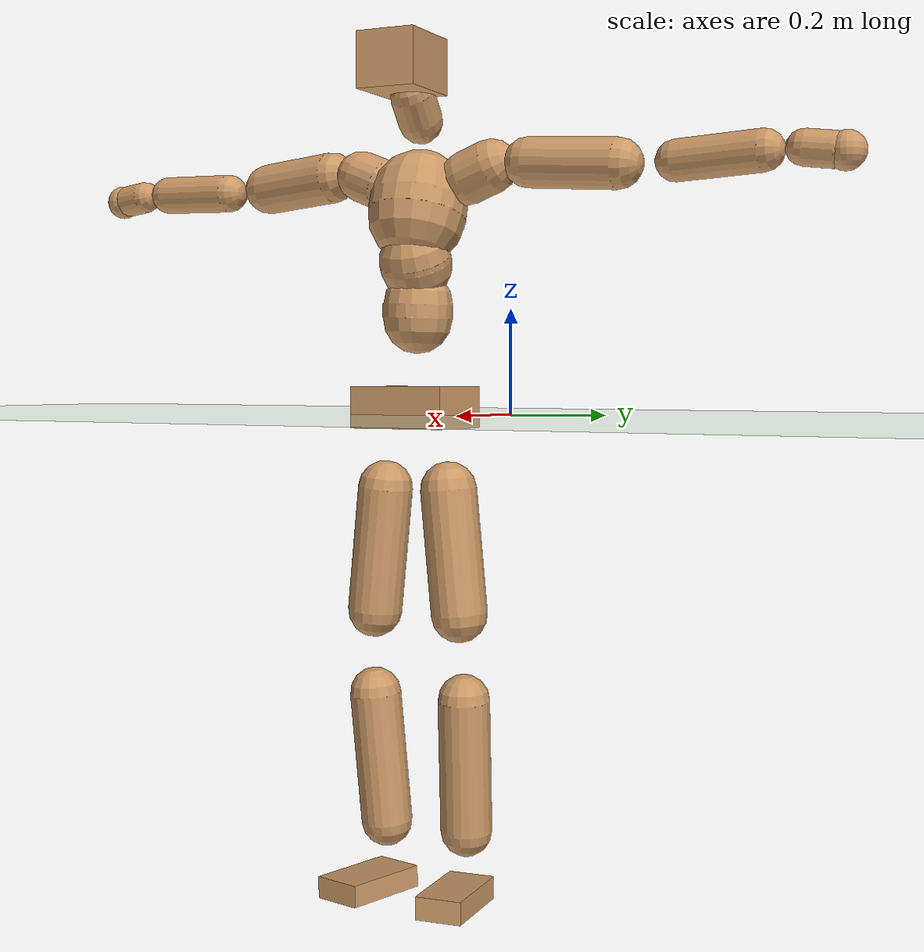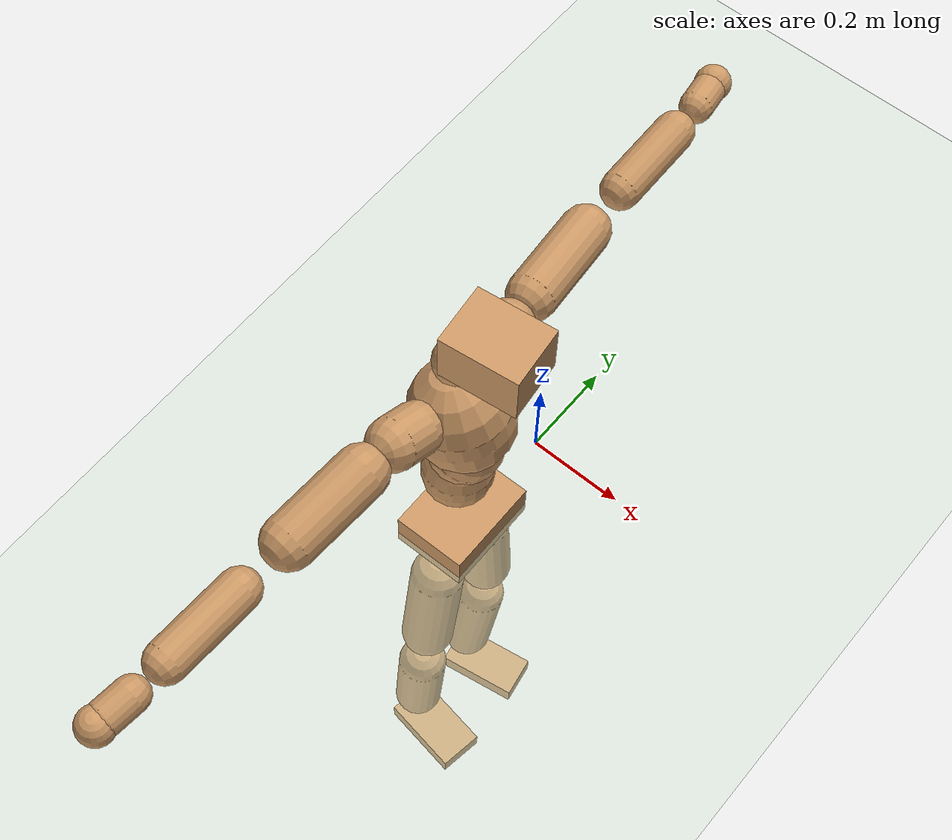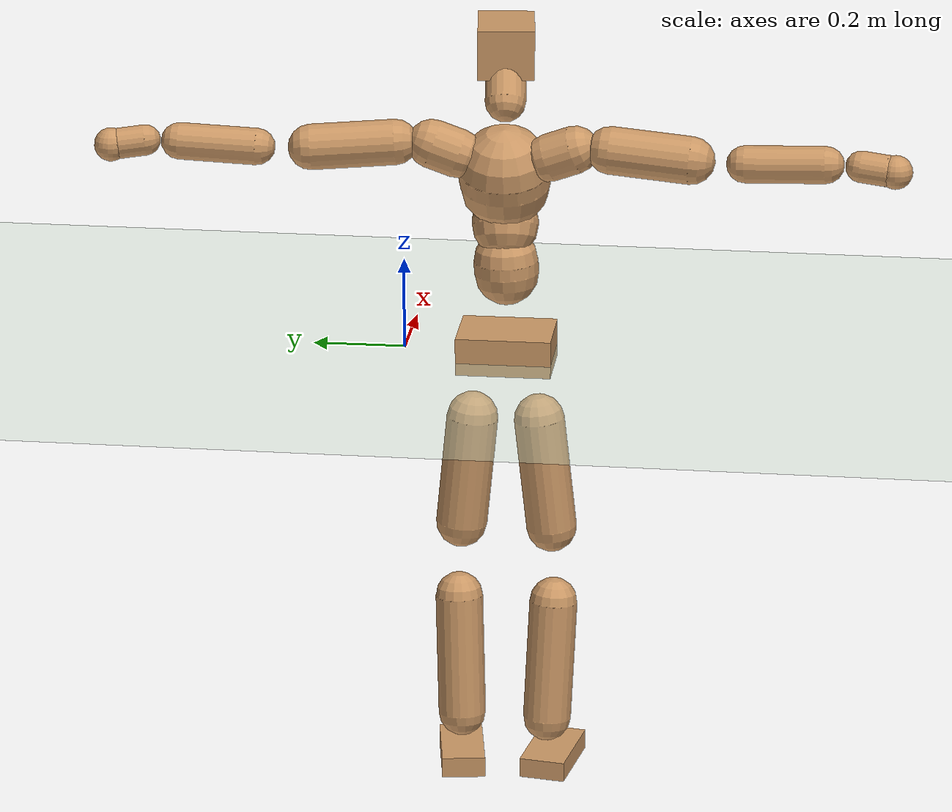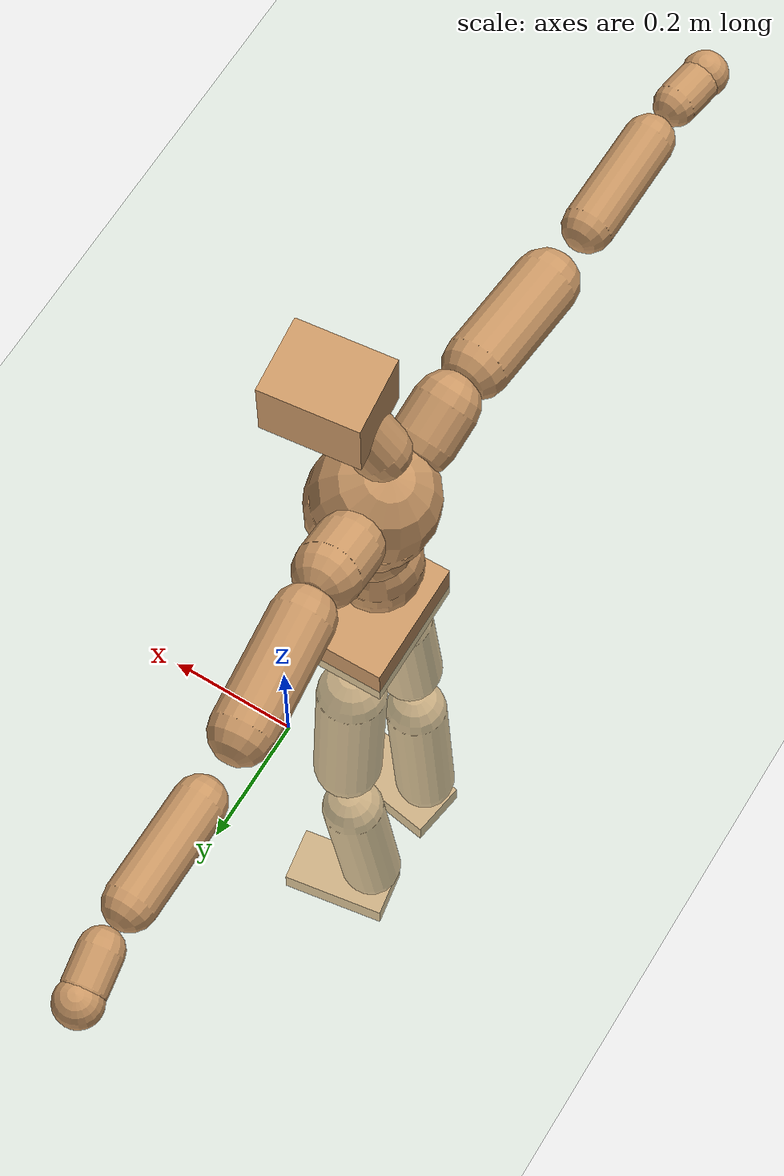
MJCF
<mujoco model="humanoid">
  <compiler coordinate="local" angle="radian"/>
  <default>
    <joint damping="0.0" armature="0.01" stiffness="0.0" limited="true"/>
    <geom conaffinity="1" condim="3" contype="7" margin="0.001" rgba="0.8 0.6 .4 1"/>
  </default>
  <asset>
    <texture type="skybox" builtin="gradient" rgb1=".4 .5 .6" rgb2="0 0 0" width="100" height="100"/>
    <texture builtin="flat" height="1278" mark="cross" markrgb="1 1 1" name="texgeom" random="0.01" rgb1="0.8 0.6 0.4" rgb2="0.8 0.6 0.4" type="cube" width="127"/>
    <texture builtin="checker" height="100" name="texplane" rgb1="0 0 0" rgb2="0.8 0.8 0.8" type="2d" width="100"/>
    <material name="MatPlane" reflectance="0.5" shininess="1" specular="1" texrepeat="60 60" texture="texplane"/>
    <material name="geom" texture="texgeom" texuniform="true"/>
  </asset>
  <worldbody>
    <light cutoff="100" diffuse="1 1 1" dir="-0 0 -1.3" directional="true" exponent="1" pos="0 0 1.3" specular=".1 .1 .1"/>
    <geom conaffinity="1" condim="3" name="floor" pos="0 0 0" rgba="0.8 0.9 0.8 1" size="100 100 .2" type="plane" material="MatPlane"/>
    <body name="Pelvis" pos="-0.0023 -0.223 0.0244">
      <freejoint name="Pelvis"/>
      <geom type="box" contype="1" conaffinity="1" density="500" pos="-0.0064 -0.0000 -0.0127" size="0.0765 0.1032 0.0413" quat="1.0000 0.0000 0.0000 0.0033" name="Pelvis"/>
      <body name="L_Hip" pos="-0.0124 0.0659 -0.0925">
        <joint name="L_Hip_x" type="hinge" pos="0 0 0" axis="1 0 0" stiffness="800" damping="80" armature="0.02" range="-180.0000 180.0000"/>
        <joint name="L_Hip_y" type="hinge" pos="0 0 0" axis="0 1 0" stiffness="800" damping="80" armature="0.02" range="-180.0000 180.0000"/>
        <joint name="L_Hip_z" type="hinge" pos="0 0 0" axis="0 0 1" stiffness="800" damping="80" armature="0.02" range="-180.0000 180.0000"/>
        <geom type="capsule" contype="1" conaffinity="1" density="500" fromto="-0.0007 0.0079 -0.0823 -0.0028 0.0318 -0.3291" size="0.056" name="L_Hip"/>
        <body name="L_Knee" pos="-0.0035 0.0397 -0.4114">
          <joint name="L_Knee_x" type="hinge" pos="0 0 0" axis="1 0 0" stiffness="800" damping="80" armature="0.02" range="-180.0000 180.0000"/>
          <joint name="L_Knee_y" type="hinge" pos="0 0 0" axis="0 1 0" stiffness="800" damping="80" armature="0.02" range="-180.0000 180.0000"/>
          <joint name="L_Knee_z" type="hinge" pos="0 0 0" axis="0 0 1" stiffness="800" damping="80" armature="0.02" range="-180.0000 180.0000"/>
          <geom type="capsule" contype="1" conaffinity="1" density="500" fromto="-0.0088 -0.0031 -0.0899 -0.0352 -0.0124 -0.3594" size="0.0521" name="L_Knee"/>
          <body name="L_Ankle" pos="-0.044 -0.0155 -0.4493">
            <joint name="L_Ankle_x" type="hinge" pos="0 0 0" axis="1 0 0" stiffness="800" damping="80" armature="0.02" range="-180.0000 180.0000"/>
            <joint name="L_Ankle_y" type="hinge" pos="0 0 0" axis="0 1 0" stiffness="800" damping="80" armature="0.02" range="-180.0000 180.0000"/>
            <joint name="L_Ankle_z" type="hinge" pos="0 0 0" axis="0 0 1" stiffness="800" damping="80" armature="0.02" range="-180.0000 180.0000"/>
            <geom type="box" contype="1" conaffinity="1" density="500" pos="0.0646 0.0105 -0.0321" size="0.0903 0.0474 0.023" quat="0.9967 0.0000 0.0000 0.0806" name="L_Ankle"/>
            <body name="L_Toe" pos="0.1293 0.021 -0.0643">
              <joint name="L_Toe_x" type="hinge" pos="0 0 0" axis="1 0 0" stiffness="500" damping="50" armature="0.02" range="-180.0000 180.0000"/>
              <joint name="L_Toe_y" type="hinge" pos="0 0 0" axis="0 1 0" stiffness="500" damping="50" armature="0.02" range="-180.0000 180.0000"/>
              <joint name="L_Toe_z" type="hinge" pos="0 0 0" axis="0 0 1" stiffness="500" damping="50" armature="0.02" range="-180.0000 180.0000"/>
              <geom type="box" contype="1" conaffinity="1" density="500" pos="0.0000 0.0000 0.0317" size="0.001 0.0024 0.0011" quat="0.9962 0.0000 0.0000 0.0868" name="L_Toe"/>
            </body>
          </body>
        </body>
      </body>
      <body name="R_Hip" pos="-0.0071 -0.0627 -0.0918">
        <joint name="R_Hip_x" type="hinge" pos="0 0 0" axis="1 0 0" stiffness="800" damping="80" armature="0.02" range="-180.0000 180.0000"/>
        <joint name="R_Hip_y" type="hinge" pos="0 0 0" axis="0 1 0" stiffness="800" damping="80" armature="0.02" range="-180.0000 180.0000"/>
        <joint name="R_Hip_z" type="hinge" pos="0 0 0" axis="0 0 1" stiffness="800" damping="80" armature="0.02" range="-180.0000 180.0000"/>
        <geom type="capsule" contype="1" conaffinity="1" density="500" fromto="-0.0012 -0.0094 -0.0835 -0.0049 -0.0378 -0.3339" size="0.0551" name="R_Hip"/>
        <body name="R_Knee" pos="-0.0062 -0.0472 -0.4174">
          <joint name="R_Knee_x" type="hinge" pos="0 0 0" axis="1 0 0" stiffness="800" damping="80" armature="0.02" range="-180.0000 180.0000"/>
          <joint name="R_Knee_y" type="hinge" pos="0 0 0" axis="0 1 0" stiffness="800" damping="80" armature="0.02" range="-180.0000 180.0000"/>
          <joint name="R_Knee_z" type="hinge" pos="0 0 0" axis="0 0 1" stiffness="800" damping="80" armature="0.02" range="-180.0000 180.0000"/>
          <geom type="capsule" contype="1" conaffinity="1" density="500" fromto="-0.0083 0.0036 -0.0896 -0.0332 0.0145 -0.3586" size="0.0525" name="R_Knee"/>
          <body name="R_Ankle" pos="-0.0415 0.0182 -0.4482">
            <joint name="R_Ankle_x" type="hinge" pos="0 0 0" axis="1 0 0" stiffness="800" damping="80" armature="0.02" range="-180.0000 180.0000"/>
            <joint name="R_Ankle_y" type="hinge" pos="0 0 0" axis="0 1 0" stiffness="800" damping="80" armature="0.02" range="-180.0000 180.0000"/>
            <joint name="R_Ankle_z" type="hinge" pos="0 0 0" axis="0 0 1" stiffness="800" damping="80" armature="0.02" range="-180.0000 180.0000"/>
            <geom type="box" contype="1" conaffinity="1" density="500" pos="0.0668 -0.0106 -0.0264" size="0.0933 0.0505 0.022" quat="0.9969 0.0000 0.0000 -0.0789" name="R_Ankle"/>
            <body name="R_Toe" pos="0.1336 -0.0213 -0.0528">
              <joint name="R_Toe_x" type="hinge" pos="0 0 0" axis="1 0 0" stiffness="500" damping="50" armature="0.02" range="-180.0000 180.0000"/>
              <joint name="R_Toe_y" type="hinge" pos="0 0 0" axis="0 1 0" stiffness="500" damping="50" armature="0.02" range="-180.0000 180.0000"/>
              <joint name="R_Toe_z" type="hinge" pos="0 0 0" axis="0 0 1" stiffness="500" damping="50" armature="0.02" range="-180.0000 180.0000"/>
              <geom type="box" contype="1" conaffinity="1" density="500" pos="0.0000 0.0000 0.0299" size="0.0009 0.0024 0.0013" quat="0.9975 0.0000 0.0000 -0.0706" name="R_Toe"/>
            </body>
          </body>
        </body>
      </body>
      <body name="Torso" pos="-0.0191 -0.0035 0.1081">
        <joint name="Torso_x" type="hinge" pos="0 0 0" axis="1 0 0" stiffness="1000" damping="100" armature="0.02" range="-180.0000 180.0000"/>
        <joint name="Torso_y" type="hinge" pos="0 0 0" axis="0 1 0" stiffness="1000" damping="100" armature="0.02" range="-180.0000 180.0000"/>
        <joint name="Torso_z" type="hinge" pos="0 0 0" axis="0 0 1" stiffness="1000" damping="100" armature="0.02" range="-180.0000 180.0000"/>
        <geom type="capsule" contype="1" conaffinity="1" density="500" fromto="0.0007 0.0030 0.0822 0.0005 0.0020 0.0548" size="0.0699" name="Torso"/>
        <body name="Spine" pos="0.0012 0.0051 0.1371">
          <joint name="Spine_x" type="hinge" pos="0 0 0" axis="1 0 0" stiffness="1000" damping="100" armature="0.02" range="-180.0000 180.0000"/>
          <joint name="Spine_y" type="hinge" pos="0 0 0" axis="0 1 0" stiffness="1000" damping="100" armature="0.02" range="-180.0000 180.0000"/>
          <joint name="Spine_z" type="hinge" pos="0 0 0" axis="0 0 1" stiffness="1000" damping="100" armature="0.02" range="-180.0000 180.0000"/>
          <geom type="capsule" contype="1" conaffinity="1" density="500" fromto="0.0156 0.0014 0.0322 0.0104 0.0009 0.0215" size="0.0716" name="Spine"/>
          <body name="Chest" pos="0.026 0.0023 0.0536">
            <joint name="Chest_x" type="hinge" pos="0 0 0" axis="1 0 0" stiffness="1000" damping="100" armature="0.02" range="-180.0000 180.0000"/>
            <joint name="Chest_y" type="hinge" pos="0 0 0" axis="0 1 0" stiffness="1000" damping="100" armature="0.02" range="-180.0000 180.0000"/>
            <joint name="Chest_z" type="hinge" pos="0 0 0" axis="0 0 1" stiffness="1000" damping="100" armature="0.02" range="-180.0000 180.0000"/>
            <geom type="capsule" contype="1" conaffinity="1" density="500" fromto="-0.0274 -0.0014 0.0983 -0.0183 -0.0010 0.0655" size="0.0979" name="Chest"/>
            <body name="Neck" pos="-0.0485 -0.0052 0.2369">
              <joint name="Neck_x" type="hinge" pos="0 0 0" axis="1 0 0" stiffness="500" damping="50" armature="0.02" range="-180.0000 180.0000"/>
              <joint name="Neck_y" type="hinge" pos="0 0 0" axis="0 1 0" stiffness="500" damping="50" armature="0.02" range="-180.0000 180.0000"/>
              <joint name="Neck_z" type="hinge" pos="0 0 0" axis="0 0 1" stiffness="500" damping="50" armature="0.02" range="-180.0000 180.0000"/>
              <geom type="capsule" contype="1" conaffinity="1" density="500" fromto="0.0118 0.0010 0.0152 0.0473 0.0039 0.0608" size="0.044" name="Neck"/>
              <body name="Head" pos="0.0592 0.0049 0.076">
                <joint name="Head_x" type="hinge" pos="0 0 0" axis="1 0 0" stiffness="500" damping="50" armature="0.02" range="-180.0000 180.0000"/>
                <joint name="Head_y" type="hinge" pos="0 0 0" axis="0 1 0" stiffness="500" damping="50" armature="0.02" range="-180.0000 180.0000"/>
                <joint name="Head_z" type="hinge" pos="0 0 0" axis="0 0 1" stiffness="500" damping="50" armature="0.02" range="-180.0000 180.0000"/>
                <geom type="box" contype="1" conaffinity="1" density="500" pos="0.0306 0.0035 0.0390" size="0.077 0.0605 0.0543" quat="0.9984 0.0000 0.0000 0.0564" name="Head"/>
              </body>
            </body>
            <body name="L_Thorax" pos="-0.0429 0.078 0.1281">
              <joint name="L_Thorax_x" type="hinge" pos="0 0 0" axis="1 0 0" stiffness="500" damping="50" armature="0.02" range="-180.0000 180.0000"/>
              <joint name="L_Thorax_y" type="hinge" pos="0 0 0" axis="0 1 0" stiffness="500" damping="50" armature="0.02" range="-180.0000 180.0000"/>
              <joint name="L_Thorax_z" type="hinge" pos="0 0 0" axis="0 0 1" stiffness="500" damping="50" armature="0.02" range="-180.0000 180.0000"/>
              <geom type="capsule" contype="1" conaffinity="1" density="500" fromto="-0.0010 0.0185 0.0069 -0.0041 0.0740 0.0276" size="0.0527" name="L_Thorax"/>
              <body name="L_Shoulder" pos="-0.0051 0.0925 0.0345">
                <joint name="L_Shoulder_x" type="hinge" pos="0 0 0" axis="1 0 0" stiffness="500" damping="50" armature="0.02" range="-720.0000 720.0000"/>
                <joint name="L_Shoulder_y" type="hinge" pos="0 0 0" axis="0 1 0" stiffness="500" damping="50" armature="0.02" range="-720.0000 720.0000"/>
                <joint name="L_Shoulder_z" type="hinge" pos="0 0 0" axis="0 0 1" stiffness="500" damping="50" armature="0.02" range="-720.0000 720.0000"/>
                <geom type="capsule" contype="1" conaffinity="1" density="500" fromto="-0.0058 0.0598 -0.0040 -0.0232 0.2390 -0.0162" size="0.0492" name="L_Shoulder"/>
                <body name="L_Elbow" pos="-0.029 0.2988 -0.0202">
                  <joint name="L_Elbow_x" type="hinge" pos="0 0 0" axis="1 0 0" stiffness="500" damping="50" armature="0.02" range="-720.0000 720.0000"/>
                  <joint name="L_Elbow_y" type="hinge" pos="0 0 0" axis="0 1 0" stiffness="500" damping="50" armature="0.02" range="-720.0000 720.0000"/>
                  <joint name="L_Elbow_z" type="hinge" pos="0 0 0" axis="0 0 1" stiffness="500" damping="50" armature="0.02" range="-720.0000 720.0000"/>
                  <geom type="capsule" contype="1" conaffinity="1" density="500" fromto="-0.0001 0.0557 0.0022 -0.0006 0.2229 0.0089" size="0.0395" name="L_Elbow"/>
                  <body name="L_Wrist" pos="-0.0007 0.2786 0.0112">
                    <joint name="L_Wrist_x" type="hinge" pos="0 0 0" axis="1 0 0" stiffness="300" damping="30" armature="0.02" range="-180.0000 180.0000"/>
                    <joint name="L_Wrist_y" type="hinge" pos="0 0 0" axis="0 1 0" stiffness="300" damping="30" armature="0.02" range="-180.0000 180.0000"/>
                    <joint name="L_Wrist_z" type="hinge" pos="0 0 0" axis="0 0 1" stiffness="300" damping="30" armature="0.02" range="-180.0000 180.0000"/>
                    <geom type="capsule" contype="1" conaffinity="1" density="500" fromto="-0.0030 0.0181 -0.0022 -0.0120 0.0723 -0.0089" size="0.0333" name="L_Wrist"/>
                    <body name="L_Hand" pos="-0.015 0.0904 -0.0111">
                      <joint name="L_Hand_x" type="hinge" pos="0 0 0" axis="1 0 0" stiffness="300" damping="30" armature="0.02" range="-180.0000 180.0000"/>
                      <joint name="L_Hand_y" type="hinge" pos="0 0 0" axis="0 1 0" stiffness="300" damping="30" armature="0.02" range="-180.0000 180.0000"/>
                      <joint name="L_Hand_z" type="hinge" pos="0 0 0" axis="0 0 1" stiffness="300" damping="30" armature="0.02" range="-180.0000 180.0000"/>
                      <geom type="sphere" contype="1" conaffinity="1" density="500" size="0.0361" pos="0.0000 0.0000 0.0000" name="L_Hand"/>
                    </body>
                  </body>
                </body>
              </body>
            </body>
            <body name="R_Thorax" pos="-0.0456 -0.08 0.1262">
              <joint name="R_Thorax_x" type="hinge" pos="0 0 0" axis="1 0 0" stiffness="500" damping="50" armature="0.02" range="-180.0000 180.0000"/>
              <joint name="R_Thorax_y" type="hinge" pos="0 0 0" axis="0 1 0" stiffness="500" damping="50" armature="0.02" range="-180.0000 180.0000"/>
              <joint name="R_Thorax_z" type="hinge" pos="0 0 0" axis="0 0 1" stiffness="500" damping="50" armature="0.02" range="-180.0000 180.0000"/>
              <geom type="capsule" contype="1" conaffinity="1" density="500" fromto="-0.0013 -0.0187 0.0072 -0.0052 -0.0749 0.0288" size="0.0512" name="R_Thorax"/>
              <body name="R_Shoulder" pos="-0.0065 -0.0936 0.036">
                <joint name="R_Shoulder_x" type="hinge" pos="0 0 0" axis="1 0 0" stiffness="500" damping="50" armature="0.02" range="-720.0000 720.0000"/>
                <joint name="R_Shoulder_y" type="hinge" pos="0 0 0" axis="0 1 0" stiffness="500" damping="50" armature="0.02" range="-720.0000 720.0000"/>
                <joint name="R_Shoulder_z" type="hinge" pos="0 0 0" axis="0 0 1" stiffness="500" damping="50" armature="0.02" range="-720.0000 720.0000"/>
                <geom type="capsule" contype="1" conaffinity="1" density="500" fromto="-0.0039 -0.0575 -0.0041 -0.0158 -0.2299 -0.0163" size="0.0514" name="R_Shoulder"/>
                <body name="R_Elbow" pos="-0.0197 -0.2874 -0.0203">
                  <joint name="R_Elbow_x" type="hinge" pos="0 0 0" axis="1 0 0" stiffness="500" damping="50" armature="0.02" range="-720.0000 720.0000"/>
                  <joint name="R_Elbow_y" type="hinge" pos="0 0 0" axis="0 1 0" stiffness="500" damping="50" armature="0.02" range="-720.0000 720.0000"/>
                  <joint name="R_Elbow_z" type="hinge" pos="0 0 0" axis="0 0 1" stiffness="500" damping="50" armature="0.02" range="-720.0000 720.0000"/>
                  <geom type="capsule" contype="1" conaffinity="1" density="500" fromto="-0.0012 -0.0569 0.0020 -0.0047 -0.2276 0.0078" size="0.0399" name="R_Elbow"/>
                  <body name="R_Wrist" pos="-0.0058 -0.2845 0.0098">
                    <joint name="R_Wrist_x" type="hinge" pos="0 0 0" axis="1 0 0" stiffness="300" damping="30" armature="0.02" range="-180.0000 180.0000"/>
                    <joint name="R_Wrist_y" type="hinge" pos="0 0 0" axis="0 1 0" stiffness="300" damping="30" armature="0.02" range="-180.0000 180.0000"/>
                    <joint name="R_Wrist_z" type="hinge" pos="0 0 0" axis="0 0 1" stiffness="300" damping="30" armature="0.02" range="-180.0000 180.0000"/>
                    <geom type="capsule" contype="1" conaffinity="1" density="500" fromto="-0.0023 -0.0182 -0.0017 -0.0093 -0.0729 -0.0067" size="0.034" name="R_Wrist"/>
                    <body name="R_Hand" pos="-0.0117 -0.0911 -0.0083">
                      <joint name="R_Hand_x" type="hinge" pos="0 0 0" axis="1 0 0" stiffness="300" damping="30" armature="0.02" range="-180.0000 180.0000"/>
                      <joint name="R_Hand_y" type="hinge" pos="0 0 0" axis="0 1 0" stiffness="300" damping="30" armature="0.02" range="-180.0000 180.0000"/>
                      <joint name="R_Hand_z" type="hinge" pos="0 0 0" axis="0 0 1" stiffness="300" damping="30" armature="0.02" range="-180.0000 180.0000"/>
                      <geom type="sphere" contype="1" conaffinity="1" density="500" size="0.0362" pos="0.0000 0.0000 0.0000" name="R_Hand"/>
                    </body>
                  </body>
                </body>
              </body>
            </body>
          </body>
        </body>
      </body>
    </body>
  </worldbody>
  <actuator>
    <motor name="L_Hip_x" joint="L_Hip_x" gear="500"/>
    <motor name="L_Hip_y" joint="L_Hip_y" gear="500"/>
    <motor name="L_Hip_z" joint="L_Hip_z" gear="500"/>
    <motor name="L_Knee_x" joint="L_Knee_x" gear="500"/>
    <motor name="L_Knee_y" joint="L_Knee_y" gear="500"/>
    <motor name="L_Knee_z" joint="L_Knee_z" gear="500"/>
    <motor name="L_Ankle_x" joint="L_Ankle_x" gear="500"/>
    <motor name="L_Ankle_y" joint="L_Ankle_y" gear="500"/>
    <motor name="L_Ankle_z" joint="L_Ankle_z" gear="500"/>
    <motor name="L_Toe_x" joint="L_Toe_x" gear="500"/>
    <motor name="L_Toe_y" joint="L_Toe_y" gear="500"/>
    <motor name="L_Toe_z" joint="L_Toe_z" gear="500"/>
    <motor name="R_Hip_x" joint="R_Hip_x" gear="500"/>
    <motor name="R_Hip_y" joint="R_Hip_y" gear="500"/>
    <motor name="R_Hip_z" joint="R_Hip_z" gear="500"/>
    <motor name="R_Knee_x" joint="R_Knee_x" gear="500"/>
    <motor name="R_Knee_y" joint="R_Knee_y" gear="500"/>
    <motor name="R_Knee_z" joint="R_Knee_z" gear="500"/>
    <motor name="R_Ankle_x" joint="R_Ankle_x" gear="500"/>
    <motor name="R_Ankle_y" joint="R_Ankle_y" gear="500"/>
    <motor name="R_Ankle_z" joint="R_Ankle_z" gear="500"/>
    <motor name="R_Toe_x" joint="R_Toe_x" gear="500"/>
    <motor name="R_Toe_y" joint="R_Toe_y" gear="500"/>
    <motor name="R_Toe_z" joint="R_Toe_z" gear="500"/>
    <motor name="Torso_x" joint="Torso_x" gear="500"/>
    <motor name="Torso_y" joint="Torso_y" gear="500"/>
    <motor name="Torso_z" joint="Torso_z" gear="500"/>
    <motor name="Spine_x" joint="Spine_x" gear="500"/>
    <motor name="Spine_y" joint="Spine_y" gear="500"/>
    <motor name="Spine_z" joint="Spine_z" gear="500"/>
    <motor name="Chest_x" joint="Chest_x" gear="500"/>
    <motor name="Chest_y" joint="Chest_y" gear="500"/>
    <motor name="Chest_z" joint="Chest_z" gear="500"/>
    <motor name="Neck_x" joint="Neck_x" gear="500"/>
    <motor name="Neck_y" joint="Neck_y" gear="500"/>
    <motor name="Neck_z" joint="Neck_z" gear="500"/>
    <motor name="Head_x" joint="Head_x" gear="500"/>
    <motor name="Head_y" joint="Head_y" gear="500"/>
    <motor name="Head_z" joint="Head_z" gear="500"/>
    <motor name="L_Thorax_x" joint="L_Thorax_x" gear="500"/>
    <motor name="L_Thorax_y" joint="L_Thorax_y" gear="500"/>
    <motor name="L_Thorax_z" joint="L_Thorax_z" gear="500"/>
    <motor name="L_Shoulder_x" joint="L_Shoulder_x" gear="500"/>
    <motor name="L_Shoulder_y" joint="L_Shoulder_y" gear="500"/>
    <motor name="L_Shoulder_z" joint="L_Shoulder_z" gear="500"/>
    <motor name="L_Elbow_x" joint="L_Elbow_x" gear="500"/>
    <motor name="L_Elbow_y" joint="L_Elbow_y" gear="500"/>
    <motor name="L_Elbow_z" joint="L_Elbow_z" gear="500"/>
    <motor name="L_Wrist_x" joint="L_Wrist_x" gear="500"/>
    <motor name="L_Wrist_y" joint="L_Wrist_y" gear="500"/>
    <motor name="L_Wrist_z" joint="L_Wrist_z" gear="500"/>
    <motor name="L_Hand_x" joint="L_Hand_x" gear="500"/>
    <motor name="L_Hand_y" joint="L_Hand_y" gear="500"/>
    <motor name="L_Hand_z" joint="L_Hand_z" gear="500"/>
    <motor name="R_Thorax_x" joint="R_Thorax_x" gear="500"/>
    <motor name="R_Thorax_y" joint="R_Thorax_y" gear="500"/>
    <motor name="R_Thorax_z" joint="R_Thorax_z" gear="500"/>
    <motor name="R_Shoulder_x" joint="R_Shoulder_x" gear="500"/>
    <motor name="R_Shoulder_y" joint="R_Shoulder_y" gear="500"/>
    <motor name="R_Shoulder_z" joint="R_Shoulder_z" gear="500"/>
    <motor name="R_Elbow_x" joint="R_Elbow_x" gear="500"/>
    <motor name="R_Elbow_y" joint="R_Elbow_y" gear="500"/>
    <motor name="R_Elbow_z" joint="R_Elbow_z" gear="500"/>
    <motor name="R_Wrist_x" joint="R_Wrist_x" gear="500"/>
    <motor name="R_Wrist_y" joint="R_Wrist_y" gear="500"/>
    <motor name="R_Wrist_z" joint="R_Wrist_z" gear="500"/>
    <motor name="R_Hand_x" joint="R_Hand_x" gear="500"/>
    <motor name="R_Hand_y" joint="R_Hand_y" gear="500"/>
    <motor name="R_Hand_z" joint="R_Hand_z" gear="500"/>
  </actuator>
  <contact>
    <exclude body1="Torso" body2="Chest"/>
    <exclude body1="Head" body2="Chest"/>
    <exclude body1="R_Knee" body2="R_Toe"/>
    <exclude body1="R_Knee" body2="L_Ankle"/>
    <exclude body1="R_Knee" body2="L_Toe"/>
    <exclude body1="L_Knee" body2="L_Toe"/>
    <exclude body1="L_Knee" body2="R_Ankle"/>
    <exclude body1="L_Knee" body2="R_Toe"/>
    <exclude body1="L_Shoulder" body2="Chest"/>
    <exclude body1="R_Shoulder" body2="Chest"/>
  </contact>
  <sensor/>
  <size njmax="700" nconmax="700"/>
</mujoco>
